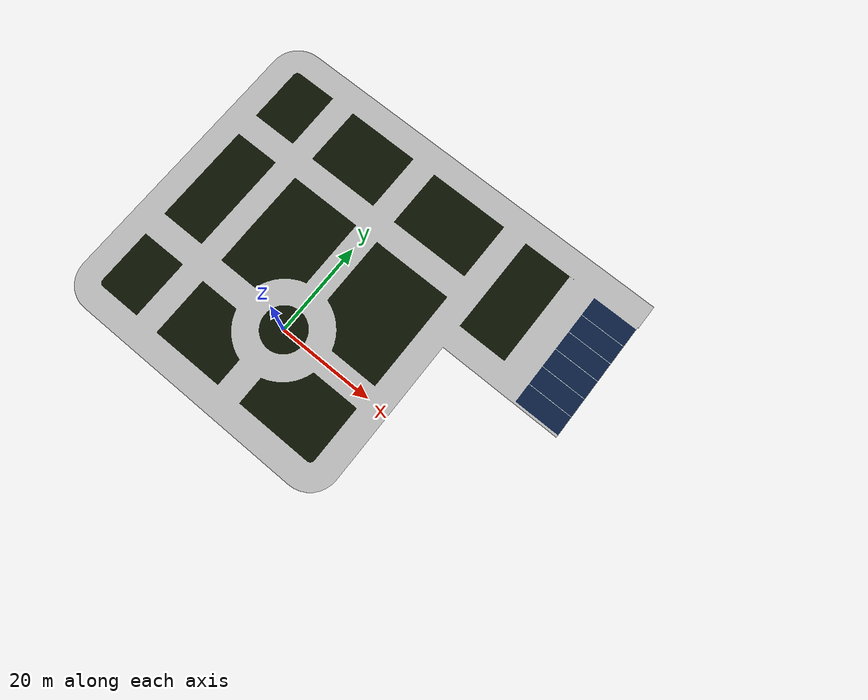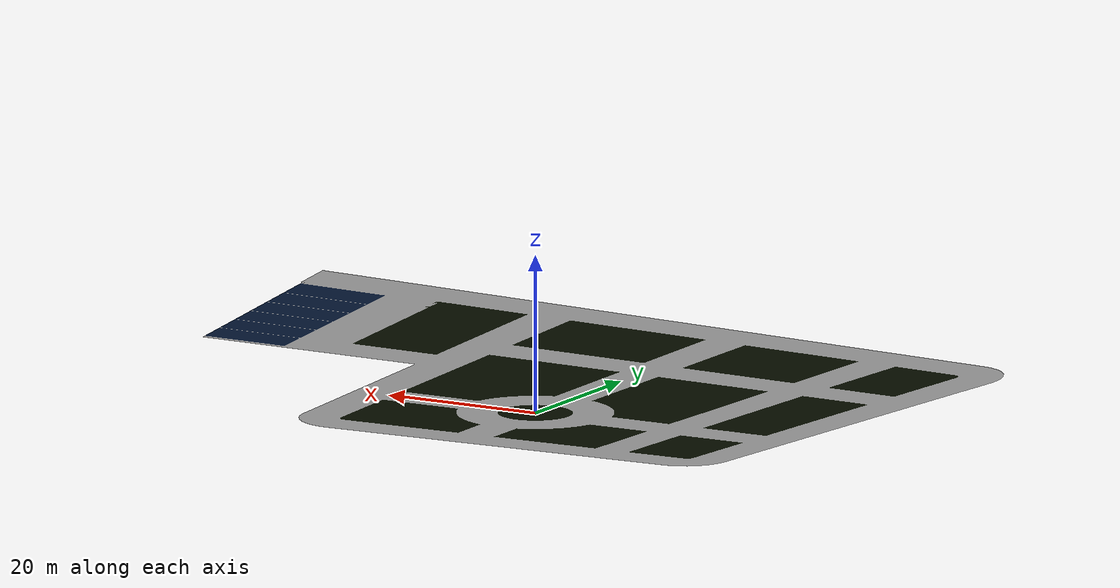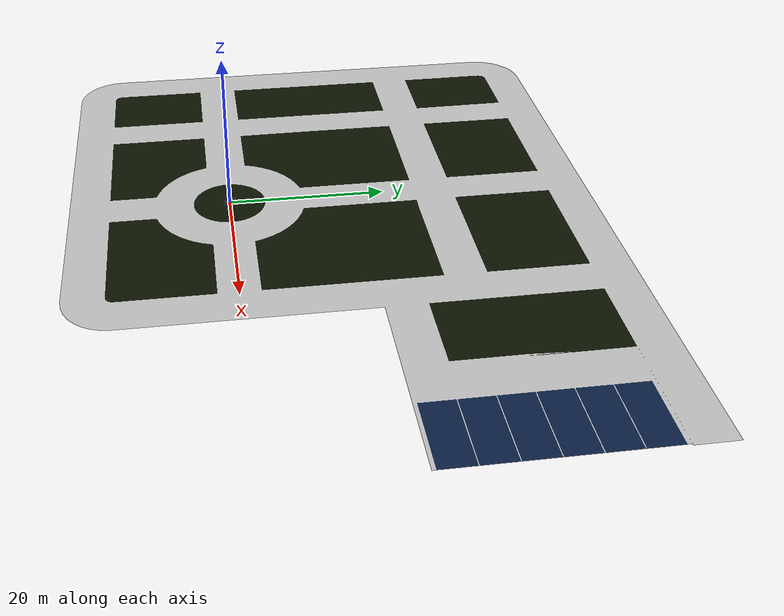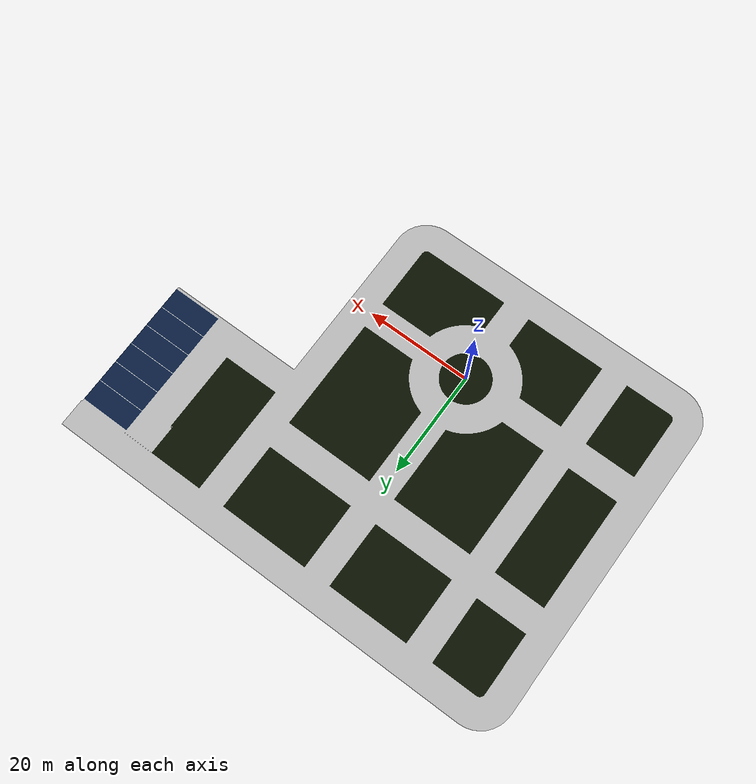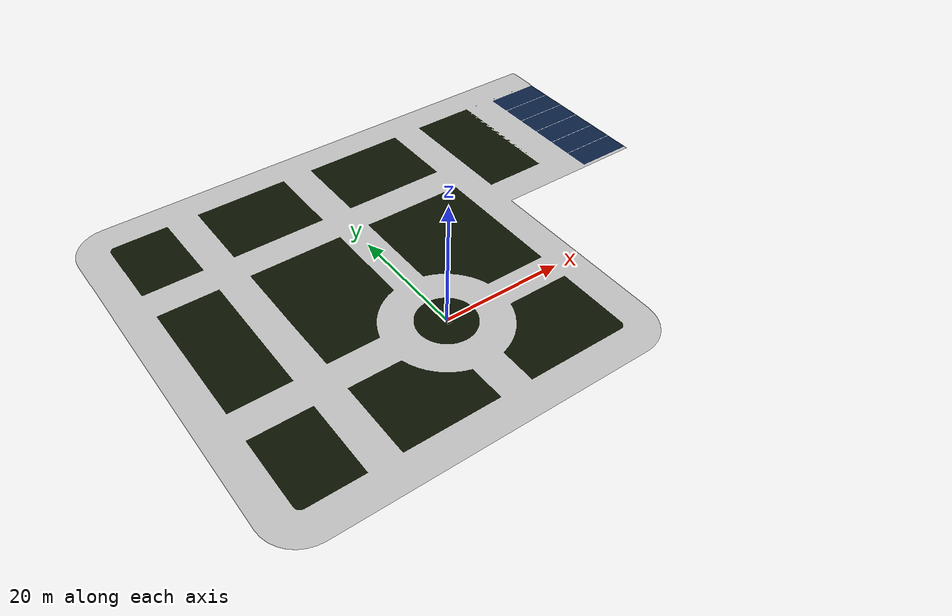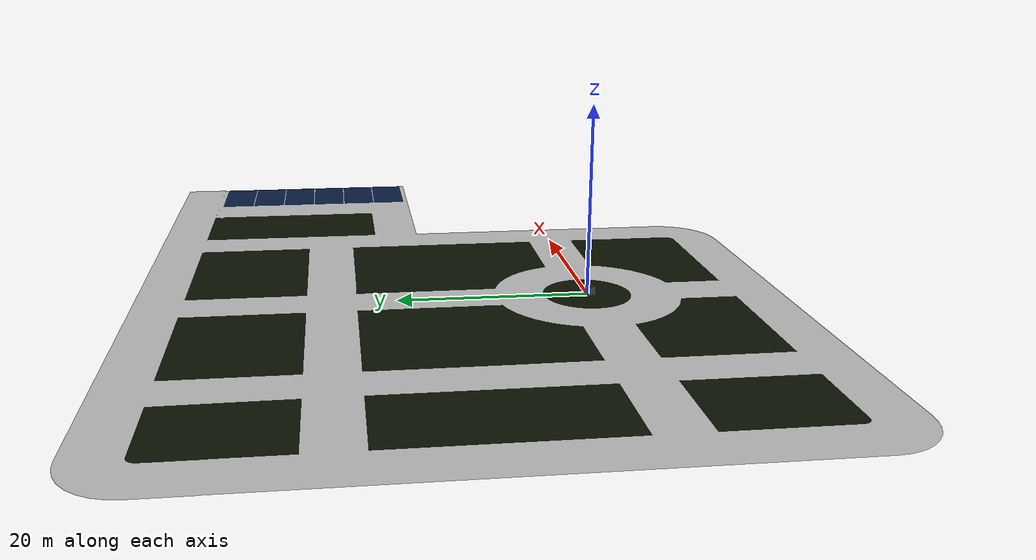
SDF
<?xml version="1.0" ?>
<sdf version="1.6">
  <model name="my_map">
    <static>true</static>
    <link name="link">
      <visual name="visual">
        <geometry>
          <mesh>
            <uri>model://harita/meshes/model.dae</uri>
          </mesh>
        </geometry>
      </visual>
      <collision name="collision">
        <geometry>
          <mesh>
            <uri>model://harita/meshes/model.dae</uri>
          </mesh>
        </geometry>
      </collision>
    </link>
  </model>
</sdf>
